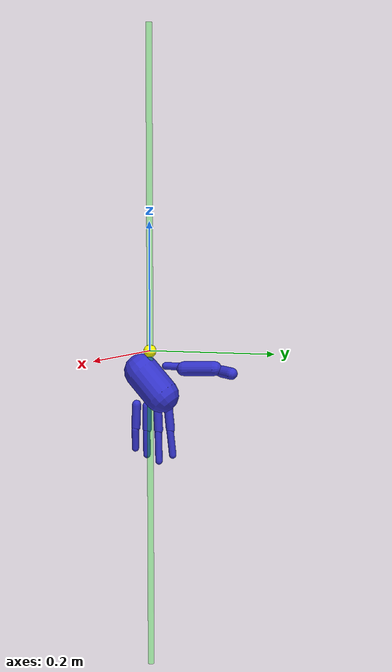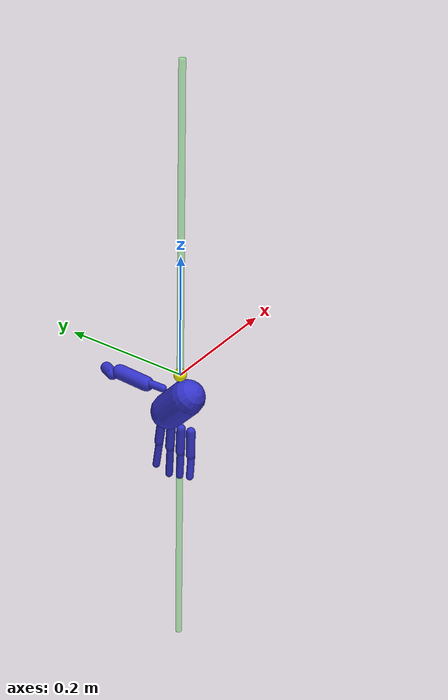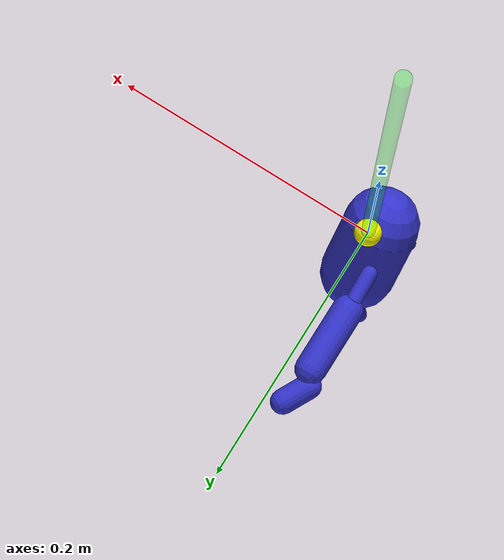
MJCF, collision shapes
<mujoco model="fourier right hand">
  <statistic center="0.3 0 0.4" extent="1"/>
  <compiler angle="radian" meshdir="./" autolimits="true"/>
  <visual>
    <headlight diffuse="0.6 0.6 0.6" ambient="0.3 0.3 0.3" specular="0 0 0"/>
    <rgba haze="0.15 0.25 0.35 1"/>
    <global azimuth="120" elevation="20"/>
  </visual>
  <default>
    <joint damping="100"/>
    <muscle ctrllimited="true" ctrlrange="0 100"/>
    <motor ctrllimited="true" ctrlrange="-3 3" gear="1"/>
    <position ctrllimited="true" kp="1"/>
  </default>
  <asset>
    <mesh name="R_hand_base_link_vis" file="meshes/fourier_hands/R_hand_base_link.STL"/>
    <mesh name="R_hand_base_link_col" file="meshes/fourier_hands/R_hand_base_link.STL"/>
    <mesh name="R_thumb_proximal_base_link_vis" file="meshes/fourier_hands/R_thumb_proximal_base_link.STL"/>
    <mesh name="R_thumb_proximal_base_link_col" file="meshes/fourier_hands/R_thumb_proximal_base_link.STL"/>
    <mesh name="R_thumb_proximal_link_vis" file="meshes/fourier_hands/R_thumb_proximal_link.STL"/>
    <mesh name="R_thumb_proximal_link_col" file="meshes/fourier_hands/R_thumb_proximal_link.STL"/>
    <mesh name="R_thumb_distal_link_vis" file="meshes/fourier_hands/R_thumb_distal_link.STL"/>
    <mesh name="R_thumb_distal_link_col" file="meshes/fourier_hands/R_thumb_distal_link.STL"/>
    <mesh name="R_index_proximal_link_vis" file="meshes/fourier_hands/R_index_proximal_link.STL"/>
    <mesh name="R_index_proximal_link_col" file="meshes/fourier_hands/R_index_proximal_link.STL"/>
    <mesh name="R_index_intermediate_link_vis" file="meshes/fourier_hands/R_index_intermediate_link.STL"/>
    <mesh name="R_index_intermediate_link_col" file="meshes/fourier_hands/R_index_intermediate_link.STL"/>
    <mesh name="R_middle_proximal_link_vis" file="meshes/fourier_hands/R_middle_proximal_link.STL"/>
    <mesh name="R_middle_proximal_link_col" file="meshes/fourier_hands/R_middle_proximal_link.STL"/>
    <mesh name="R_middle_intermediate_link_vis" file="meshes/fourier_hands/R_middle_intermediate_link.STL"/>
    <mesh name="R_middle_intermediate_link_col" file="meshes/fourier_hands/R_middle_intermediate_link.STL"/>
    <mesh name="R_ring_proximal_link_vis" file="meshes/fourier_hands/R_ring_proximal_link.STL"/>
    <mesh name="R_ring_proximal_link_col" file="meshes/fourier_hands/R_ring_proximal_link.STL"/>
    <mesh name="R_ring_intermediate_link_vis" file="meshes/fourier_hands/R_ring_intermediate_link.STL"/>
    <mesh name="R_ring_intermediate_link_col" file="meshes/fourier_hands/R_ring_intermediate_link.STL"/>
    <mesh name="R_pinky_proximal_link_vis" file="meshes/fourier_hands/R_pinky_proximal_link.STL"/>
    <mesh name="R_pinky_proximal_link_col" file="meshes/fourier_hands/R_pinky_proximal_link.STL"/>
    <mesh name="R_pinky_intermediate_link_vis" file="meshes/fourier_hands/R_pinky_intermediate_link.STL"/>
    <mesh name="R_pinky_intermediate_link_col" file="meshes/fourier_hands/R_pinky_intermediate_link.STL"/>
    <material name="site_right_hand" rgba="0.1882 0.1882 0.1882 0"/>
    <material name="r_base_material" rgba="0 0 0 1"/>
    <material name="r_thumb_material" rgba="0 0 0 1"/>
    <material name="r_index_material" rgba="0 0 0 1"/>
    <material name="r_middle_material" rgba="0 0 0 1"/>
    <material name="r_ring_material" rgba="0 0 0 1"/>
    <material name="r_pinky_material" rgba="0 0 0 1"/>
    <material name="r_thumb_distal_material" rgba="0 0 0 1"/>
  </asset>
  <worldbody>
    <body name="right_hand" pos="0 0 0" quat="0.7071068 0.7071068 0 0">
      <site name="ft_frame" pos="0 0 0" size="0.01 0.01 0.01" rgba="1 0 0 0" type="sphere" group="1"/>
      <body name="eef" pos="0 0 0" quat="0.707 0. -0.707 0.">
        <site name="grip_site" pos="0 0 0" size="0.01 0.01 0.01" rgba="1 1 0 1" type="sphere" group="2"/>
        <site name="ee_x" pos="0.1 0 0" size="0.005 .1" quat="0.707105  0 0.707108 0 " rgba="1 0 0 0" type="cylinder" group="1"/>
        <site name="ee_y" pos="0 0.1 0" size="0.005 .1" quat="0.707105 0.707108 0 0" rgba="0 1 0 0" type="cylinder" group="1"/>
        <site name="ee_z" pos="0 0 0.1" size="0.005 .1" quat="1 0 0 0" rgba="0 0 1 0" type="cylinder" group="1"/>
        <site name="grip_site_cylinder" pos="0 0 0" quat="-0.5 -0.5 -0.5 0.5" size="0.005 0.5" rgba="0 1 0 0.3" type="cylinder" group="1"/>
      </body>
      <body quat="0.5 -0.5 0.5 0.5">
        <body name="r_palm" pos="0 0 0">
          <geom name="r_palm_vis" type="mesh" material="r_base_material" mesh="R_hand_base_link_vis" group="1" contype="0" conaffinity="0"/>
          <geom name="r_palm_col" type="capsule" mass="0.5" pos="0.000706 0.004142 -0.050766" quat="0.934561 0.016845 -0.355404 0.000000" size="0.027635 0.024586" rgba="0.2 0.2 0.8 0.5"/>
          <body name="r_thumb" pos="0. 0. 0.">
            <body name="R_thumb_proximal_base_link" pos="0.021995 0.015502 -0.024995" quat="-3.67321e-06 1 0 0">
              <joint name="R_thumb_proximal_yaw_joint" pos="0 0 0" axis="0 0 -1" range="0 1.74" actuatorfrcrange="-10 10" damping="1"/>
              <geom name="R_thumb_proximal_base_link_vis" type="mesh" material="r_thumb_material" mesh="R_thumb_proximal_base_link_vis" group="1" contype="0" conaffinity="0"/>
              <geom name="R_thumb_proximal_base_link_col" type="capsule" mass="0.5" pos="0.010071 0.000138 -0.000789" quat="0.703303 -0.025284 -0.710440 0.000000" size="0.005886 0.011375" rgba="0.2 0.2 0.8 0.5"/>
              <body name="R_thumb_proximal_link" pos="0.02175 0 0" quat="0.70707 0.707143 4.31666e-06 -4.31711e-06">
                <joint name="R_thumb_proximal_pitch_joint" pos="0 0 0" axis="0 0 1" range="0 1.22" actuatorfrcrange="-10 10" damping="1"/>
                <geom name="R_thumb_proximal_link_vis" type="mesh" material="r_thumb_material" mesh="R_thumb_proximal_link_vis" group="1" contype="0" conaffinity="0"/>
                <geom name="R_thumb_proximal_link_col" type="capsule" mass="0.5" pos="0.031905 0.001557 0.000006" quat="0.707538 0.028478 0.706102 0.000000" size="0.011513 0.024844" rgba="0.2 0.2 0.8 0.5"/>
                <site name="site_R_thumb_proximal_link" size="0.01" material="site_right_hand"/>
                <body name="R_thumb_distal_link" pos="0.061444 0.0082822 0" quat="1 0 0 6.105e-06">
                  <joint name="R_thumb_distal_joint" pos="0 0 0" axis="0 0 1" range="0 1.23" actuatorfrcrange="-10 10" damping="1"/>
                  <geom name="R_thumb_distal_link_vis" type="mesh" material="r_thumb_material" mesh="R_thumb_distal_link_vis" group="1" contype="0" conaffinity="0"/>
                  <geom name="R_thumb_distal_link_col" type="capsule" mass="0.5" pos="0.015295 -0.002014 0.000251" quat="0.516671 -0.080143 0.852425 0.000000" size="0.009267 0.010690" rgba="0.2 0.2 0.8 0.5"/>
                  <site name="site_R_thumb_distal_link" size="0.01" material="site_right_hand"/>
                </body>
              </body>
            </body>
          </body>
          <body name="l_index" pos="0 0 0">
            <body name="R_index_proximal_link" pos="0.026864 0.012307 -0.095892" quat="2.00728e-05 -0.725387 -2.80225e-05 0.688341">
              <joint name="R_index_proximal_joint" pos="0 0 0" axis="0 0 -1" range="0 1.57" actuatorfrcrange="-10 10" damping="1"/>
              <geom name="R_index_proximal_link_vis" type="mesh" material="r_index_material" mesh="R_index_proximal_link_vis" group="1" contype="0" conaffinity="0"/>
              <geom name="R_index_proximal_link_col" type="capsule" mass="0.5" pos="0.009047 0.000226 0.000001" quat="0.707493 -0.085353 -0.701547 0.000000" size="0.006979 0.019095" rgba="0.2 0.2 0.8 0.5"/>
              <site name="site_R_index_proximal_link" size="0.01" material="site_right_hand"/>
              <body name="R_index_intermediate_link" pos="0.031532 -0.0054551 0">
                <joint name="R_index_intermediate_joint" pos="0 0 0" axis="0 0 -1" range="0 1.74" actuatorfrcrange="-10 10" damping="1"/>
                <geom name="R_index_intermediate_link_vis" type="mesh" material="r_index_material" mesh="R_index_intermediate_link_vis" group="1" contype="0" conaffinity="0"/>
                <geom name="R_index_intermediate_link_col" type="capsule" mass="0.5" pos="0.018657 0.002048 -0.000008" quat="0.707427 -0.100017 -0.699674 0.000000" size="0.005681 0.019511" rgba="0.2 0.2 0.8 0.5"/>
                <site name="site_R_index_intermediate_link" size="0.01" material="site_right_hand"/>
              </body>
            </body>
          </body>
          <body name="l_middle" pos="0 0 0">
            <body name="R_middle_proximal_link" pos="0.0084962 0.012307 -0.097896" quat="3.09284e-05 -0.707113 -3.61231e-05 0.707101">
              <joint name="R_middle_proximal_joint" pos="0 0 0" axis="0 0 -1" range="0 1.57" actuatorfrcrange="-10 10" damping="1"/>
              <geom name="R_middle_proximal_link_vis" type="mesh" material="r_middle_material" mesh="R_middle_proximal_link_vis" group="1" contype="0" conaffinity="0"/>
              <geom name="R_middle_proximal_link_col" type="capsule" mass="0.5" pos="0.009043 0.000483 0.000001" quat="0.706672 0.068194 0.704247 0.000000" size="0.006961 0.019112" rgba="0.2 0.2 0.8 0.5"/>
              <site name="site_R_middle_proximal_link" size="0.01" material="site_right_hand"/>
              <body name="R_middle_intermediate_link" pos="0.031662 -0.0046408 0">
                <joint name="R_middle_intermediate_joint" pos="0 0 0" axis="0 0 -1" range="0 1.74" actuatorfrcrange="-10 10" damping="1"/>
                <geom name="R_middle_intermediate_link_vis" type="mesh" material="r_middle_material" mesh="R_middle_intermediate_link_vis" group="1" contype="0" conaffinity="0"/>
                <geom name="R_middle_intermediate_link_col" type="capsule" mass="0.5" pos="0.022614 0.003172 -0.000010" quat="0.707816 -0.042560 -0.705113 0.000000" size="0.005644 0.023543" rgba="0.2 0.2 0.8 0.5"/>
                <site name="site_R_middle_intermediate_link" size="0.01" material="site_right_hand"/>
              </body>
            </body>
          </body>
          <body name="l_ring" pos="0 0 0">
            <body name="R_ring_proximal_link" pos="-0.009965 0.012307 -0.097841" quat="-2.66449e-06 -0.688341 -2.52842e-06 0.725387">
              <joint name="R_ring_proximal_joint" pos="0 0 0" axis="0 0 -1" range="0 1.57" actuatorfrcrange="-10 10" damping="1"/>
              <geom name="R_ring_proximal_link_vis" type="mesh" material="r_ring_material" mesh="R_ring_proximal_link_vis" group="1" contype="0" conaffinity="0"/>
              <geom name="R_ring_proximal_link_col" type="capsule" mass="0.5" pos="0.009047 0.000225 0.000001" quat="0.706719 0.085627 0.702293 0.000000" size="0.006978 0.019096" rgba="0.2 0.2 0.8 0.5"/>
              <site name="site_R_ring_proximal_link" size="0.01" material="site_right_hand"/>
              <body name="R_ring_intermediate_link" pos="0.031531 -0.0054572 0">
                <joint name="R_ring_intermediate_joint" pos="0 0 0" axis="0 0 -1" range="0 1.74" actuatorfrcrange="-10 10" damping="1"/>
                <geom name="R_ring_intermediate_link_vis" type="mesh" material="r_ring_material" mesh="R_ring_intermediate_link_vis" group="1" contype="0" conaffinity="0"/>
                <geom name="R_ring_intermediate_link_col" type="capsule" mass="0.5" pos="0.018659 0.002046 -0.000007" quat="0.707244 -0.100535 -0.699785 0.000000" size="0.005676 0.019516" rgba="0.2 0.2 0.8 0.5"/>
                <site name="site_R_ring_intermediate_link" size="0.01" material="site_right_hand"/>
              </body>
            </body>
          </body>
          <body name="l_pinky" pos="0 0 0">
            <body name="R_pinky_proximal_link" pos="-0.028232 0.012307 -0.095916" quat="3.85697e-05 -0.669139 -1.12538e-05 0.743137">
              <joint name="R_pinky_proximal_joint" pos="0 0 0" axis="0 0 -1" range="0 1.57" actuatorfrcrange="-10 10" damping="1"/>
              <geom name="R_pinky_proximal_link_vis" type="mesh" material="r_pinky_material" mesh="R_pinky_proximal_link_vis" group="1" contype="0" conaffinity="0"/>
              <geom name="R_pinky_proximal_link_col" type="capsule" mass="0.5" pos="0.009046 -0.000100 0.000001" quat="0.706770 0.106092 0.699443 0.000000" size="0.007002 0.019067" rgba="0.2 0.2 0.8 0.5"/>
              <site name="site_R_pinky_proximal_link" size="0.01" material="site_right_hand"/>
              <body name="R_pinky_intermediate_link" pos="0.031338 -0.0064763 0" quat="1 0 0 3.3988e-05">
                <joint name="R_pinky_intermediate_joint" pos="0 0 0" axis="0 0 -1" range="0 1.74" actuatorfrcrange="-10 10" damping="1"/>
                <geom name="R_pinky_intermediate_link_vis" type="mesh" material="r_pinky_material" mesh="R_pinky_intermediate_link_vis" group="1" contype="0" conaffinity="0"/>
                <geom name="R_pinky_intermediate_link_col" type="capsule" mass="0.5" pos="0.015709 0.001137 -0.000005" quat="0.707998 0.176088 0.683910 0.000000" size="0.005670 0.016540" rgba="0.2 0.2 0.8 0.5"/>
                <site name="site_R_pinky_intermediate_link" size="0.01" material="site_right_hand"/>
              </body>
            </body>
          </body>
        </body>
      </body>
    </body>
  </worldbody>
  <actuator>
    <position joint="R_pinky_intermediate_joint" name="R_pinky_intermediate_joint_drive" ctrlrange="0 1.74" kp="2" forcelimited="true" forcerange="-20 20"/>
    <position joint="R_pinky_proximal_joint" name="R_pinky_proximal_joint_drive" ctrlrange="0 1.57" kp="2" forcelimited="true" forcerange="-20 20"/>
    <position joint="R_ring_intermediate_joint" name="R_ring_intermediate_joint_drive" ctrlrange="0 1.74" kp="2" forcelimited="true" forcerange="-20 20"/>
    <position joint="R_ring_proximal_joint" name="R_ring_proximal_joint_drive" ctrlrange="0 1.57" kp="2" forcelimited="true" forcerange="-20 20"/>
    <position joint="R_middle_intermediate_joint" name="R_middle_intermediate_joint_drive" ctrlrange="0 1.74" kp="2" forcelimited="true" forcerange="-20 20"/>
    <position joint="R_middle_proximal_joint" name="R_middle_proximal_joint_drive" ctrlrange="0 1.57" kp="2" forcelimited="true" forcerange="-20 20"/>
    <position joint="R_index_intermediate_joint" name="R_index_intermediate_joint_drive" ctrlrange="0 1.74" kp="2" forcelimited="true" forcerange="-20 20"/>
    <position joint="R_index_proximal_joint" name="R_index_proximal_joint_drive" ctrlrange="0 1.57" kp="2" forcelimited="true" forcerange="-20 20"/>
    <position joint="R_thumb_distal_joint" name="R_thumb_distal_joint_drive" ctrlrange="0 1.23" kp="2" forcelimited="true" forcerange="-20 20"/>
    <position joint="R_thumb_proximal_pitch_joint" name="R_thumb_proximal_pitch_joint_drive" ctrlrange="0 1.22" kp="2" forcelimited="true" forcerange="-20 20"/>
    <position joint="R_thumb_proximal_yaw_joint" name="R_thumb_proximal_yaw_joint_drive" ctrlrange="0 1.74" kp="4" forcelimited="true" forcerange="-20 20"/>
  </actuator>
  <sensor>
    <force name="force_ee" site="ft_frame"/>
    <torque name="torque_ee" site="ft_frame"/>
  </sensor>
</mujoco>
